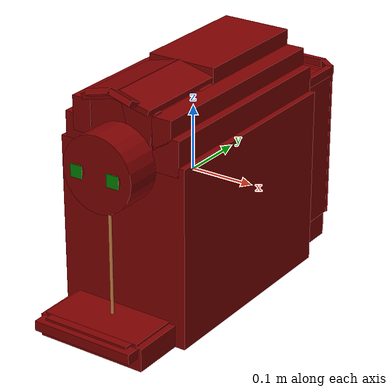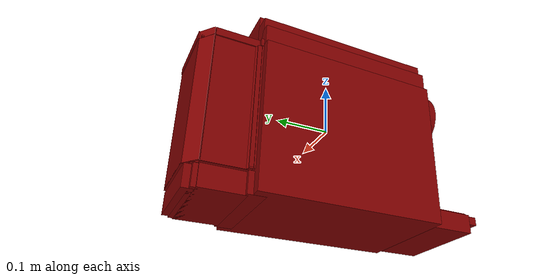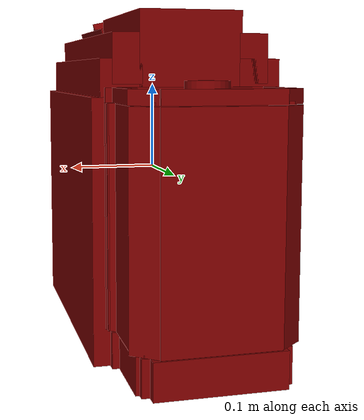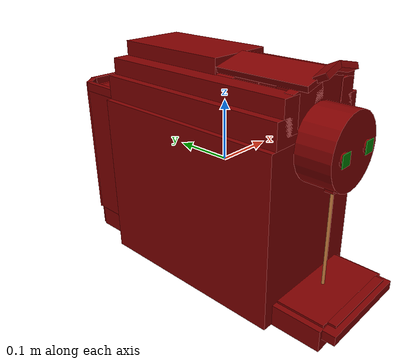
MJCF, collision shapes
<?xml version='1.0' encoding='UTF-8'?>
<mujoco model="model">
  <compiler angle="radian"/>
  <asset>
    <mesh file="visuals/Body001.obj" name="Body001_vis"/>
    <mesh file="visuals/Body001_Clear.obj" name="Body001_Clear_vis"/>
    <mesh file="visuals/Button001.obj" name="Button001_vis"/>
    <mesh file="visuals/Button002.obj" name="Button002_vis"/>
    <mesh file="visuals/Lid001.obj" name="Lid001_vis"/>
    <mesh file="visuals/Lid002.obj" name="Lid002_vis"/>
    <mesh file="visuals/Lid003.obj" name="Lid003_vis"/>
    <texture file="visuals/T_BC001.png" name="Body001_material" type="2d"/>
    <material name="Body001_material" rgba="1 1 1 1.0" texture="Body001_material" shininess="1" specular="1"/>
    <texture file="visuals/T_BC001.png" name="Body001_Clear_material" type="2d"/>
    <material name="Body001_Clear_material" rgba="1 1 1 0.1037735641002655" texture="Body001_Clear_material" shininess="0.141421377658844" specular="0.3103448502657381"/>
    <texture file="visuals/T_BC001.png" name="Lid003_material" type="2d"/>
    <material name="Lid003_material" rgba="1 1 1 1.0" texture="Lid003_material" shininess="1" specular="1"/>
    <texture file="visuals/T_BC001.png" name="Button001_material" type="2d"/>
    <material name="Button001_material" rgba="1 1 1 1.0" texture="Button001_material" shininess="1" specular="1"/>
    <texture file="visuals/T_BC001.png" name="Button002_material" type="2d"/>
    <material name="Button002_material" rgba="1 1 1 1.0" texture="Button002_material" shininess="1" specular="1"/>
    <texture file="visuals/T_BC001.png" name="Lid001_material" type="2d"/>
    <material name="Lid001_material" rgba="1 1 1 1.0" texture="Lid001_material" shininess="1" specular="1"/>
    <texture file="visuals/T_BC001.png" name="Lid002_material" type="2d"/>
    <material name="Lid002_material" rgba="1 1 1 1.0" texture="Lid002_material" shininess="1" specular="1"/>
  </asset>
  <default>
    <default class="visual">
      <geom conaffinity="0" contype="0" group="1" type="mesh"/>
    </default>
    <default class="collision">
      <geom group="0" rgba="0.5 0 0 0.5"/>
    </default>
    <default class="spawn">
      <geom group="0" rgba="1 1 1 0.5" contype="0" conaffinity="0"/>
      <site group="0" rgba="1 1 1 0.5"/>
    </default>
    <default class="region">
      <geom group="1" conaffinity="0" contype="0" rgba="0 1 0 0"/>
    </default>
  </default>
  <worldbody>
    <body>
      <body name="object">
        <geom class="collision" type="box" pos="-0.03053063154220581 -0.23362992703914642 0.07605771720409393" size="0.009716453030705452 0.000539808941539377 0.009716395288705826" quat="1.0 0.0 0.0 0.0" name="start_button_1" rgba="0.0 0.5 0 0.5"/>
        <geom class="collision" type="box" pos="0.030636020004749298 -0.2336101233959198 0.07637032121419907" size="0.009875725023448467 0.0005388128920458257 0.00987567100673914" quat="1.0 0.0 0.0 0.0" name="start_button_2" rgba="0.0 0.5 0 0.5"/>
        <site type="cylinder" rgba="0.8 0.5 0.25 1" size="0.0025214573834091425 0.08763912320137024" pos="0.0004139021330047399 -0.20192886888980865 -0.06744450330734253" name="coffee_liquid"/>
        <site rgba="0 0 0 0" size="0.009999999776482582 0.009999999776482582" pos="-2.2351741790771484e-08 -0.2032894641160965 -0.15184441208839417" name="receptacle_place_site"/>
        <geom mesh="Body001_vis" type="mesh" solimp="0.998 0.998 0.001" solref="0.001 1" density="100" friction="0.95 0.3 0.1" class="visual" material="Body001_material"/>
        <geom class="collision" type="cylinder" pos="-2.411042476779812e-10 -0.1705763339996338 0.07597971707582474" size="0.05787423253059387 0.057993460446596146" quat="0.7071067094802856 0.7071068286895752 0.0 0.0"/>
        <geom class="collision" type="box" pos="0.00012670390424318612 -0.21279460191726685 -0.17189161479473114" size="0.08779206871986389 0.0403498150408268 0.01748676411807537" quat="1.0 0.0 0.0 0.0"/>
        <geom class="collision" type="box" pos="5.317684554029256e-05 -0.2630012035369873 -0.1621111035346985" size="0.08211002498865128 0.010898980312049389 0.007653003092855215" quat="1.0 0.0 0.0 0.0"/>
        <geom class="collision" type="box" pos="-0.07402420043945312 -0.003223898122087121 0.10161573439836502" size="0.021987872198224068 0.16922087967395782 0.026904582977294922" quat="1.0 0.0 0.0 0.0"/>
        <geom class="collision" type="box" pos="-0.06755135953426361 -0.003223898122087121 0.1287151575088501" size="0.015515031293034554 0.16922087967395782 0.026026546955108643" quat="1.0 0.0 0.0 0.0"/>
        <geom class="collision" type="box" pos="0.07366996258497238 -0.003223898122087121 0.10161573439836502" size="0.021987872198224068 0.16922087967395782 0.026904582977294922" quat="1.0 0.0 0.0 0.0"/>
        <geom class="collision" type="box" pos="0.0674564391374588 -0.003223898122087121 0.1287151575088501" size="0.015515031293034554 0.16922087967395782 0.026026546955108643" quat="1.0 0.0 0.0 0.0"/>
        <geom class="collision" type="box" pos="0.0 0.06765224784612656 0.11178668588399887" size="0.054682616144418716 0.09834473580121994 0.06648891419172287" quat="1.0 0.0 0.0 0.0"/>
        <geom class="collision" type="box" pos="-0.01927906461060047 -0.04619322344660759 0.10860741138458252" size="0.031698450446128845 0.01550072617828846 0.052728310227394104" quat="0.9930583834648132 0.0 -0.11762247234582901 0.0"/>
        <geom class="collision" type="box" pos="0.014891242608428001 -0.04619322344660759 0.10917342454195023" size="0.031698450446128845 0.01550072617828846 0.052352216094732285" quat="0.9955055713653564 0.0 0.0947032943367958 0.0"/>
        <geom class="collision" type="box" pos="-0.019580164924263954 -0.16349199414253235 0.10986063629388809" size="0.031698450446128845 0.007462764158844948 0.05401720106601715" quat="0.9930583834648132 0.0 -0.11762247234582901 0.0"/>
        <geom class="collision" type="box" pos="0.015205183066427708 -0.16349199414253235 0.11080853641033173" size="0.031698450446128845 0.007462764158844948 0.05401719734072685" quat="0.9955055713653564 0.0 0.0947032943367958 0.0"/>
        <geom class="collision" type="box" pos="-2.8696833396679722e-05 0.15990829467773438 -0.17001403868198395" size="0.0865601897239685 0.01595141924917698 0.019364338368177414" quat="1.0 0.0 0.0 0.0"/>
        <geom class="collision" type="box" pos="-7.633509085280821e-05 0.21069112420082092 -0.17001403868198395" size="0.07924415171146393 0.03944094106554985 0.019364338368177414" quat="1.0 0.0 0.0 0.0"/>
        <geom class="collision" type="box" pos="-0.0005353026208467782 0.2314356565475464 -0.17001403868198395" size="0.06761838495731354 0.038716644048690796 0.019364338368177414" quat="1.0 0.0 0.0 0.0"/>
        <geom class="collision" type="box" pos="-0.0005353022716008127 0.21958574652671814 -0.17001403868198395" size="0.07573413103818893 0.038716644048690796 0.019364338368177414" quat="1.0 0.0 0.0 0.0"/>
        <geom class="collision" type="box" pos="0.0 -0.20203378796577454 0.017765555530786514" size="0.009317067451775074 0.007558492012321949 0.007558492012321949" quat="1.0 0.0 0.0 0.0"/>
        <geom class="collision" type="box" pos="-0.00018750832532532513 -0.003223898122087121 -0.04971674084663391" size="0.10459920018911362 0.16922087967395782 0.13929705321788788" quat="1.0 0.0 0.0 0.0"/>
        <body name="Body001_Clear">
          <joint axis="0.0 0.0 1.0" pos="-0.0018520471639931202 0.22811758518218994 -0.025827983394265175" limited="true" name="Body001_Clear_joint" range="0.0 0.05" type="slide" damping="1" frictionloss="1" armature=".01" stiffness="0.05"/>
          <geom mesh="Body001_Clear_vis" type="mesh" solimp="0.998 0.998 0.001" solref="0.001 1" density="100" friction="0.95 0.3 0.1" class="visual" material="Body001_Clear_material"/>
          <geom class="collision" type="box" pos="-5.596634309767978e-06 0.16842298209667206 -0.03237038478255272" size="0.0916927382349968 0.001382937072776258 0.11614834517240524" quat="1.0 0.0 0.0 0.0"/>
          <geom class="collision" type="box" pos="0.08171401172876358 0.21401485800743103 -0.03237039968371391" size="0.0015715655172243714 0.03611720725893974 0.11614836752414703" quat="1.0 0.0 0.0 0.0"/>
          <geom class="collision" type="box" pos="-0.08155886828899384 0.21401485800743103 -0.03237039968371391" size="0.0015229019336402416 0.03611720725893974 0.11614836752414703" quat="1.0 0.0 0.0 0.0"/>
          <geom class="collision" type="box" pos="0.00016788806533440948 0.2716948986053467 -0.03237039968371391" size="0.0013829396339133382 0.06073664128780365 0.11614836752414703" quat="0.7071067094802856 0.0 0.0 0.7071068286895752"/>
          <geom class="collision" type="box" pos="-0.07130854576826096 0.2615704834461212 -0.03237039968371391" size="0.0015735254855826497 0.0160224549472332 0.11614836752414703" quat="0.4308455288410187 0.0 0.0 0.9024257063865662"/>
          <geom class="collision" type="box" pos="0.0724475085735321 0.26058006286621094 -0.03237039968371391" size="0.0014991385396569967 0.01602245680987835 0.11614836752414703" quat="0.430841863155365 0.0 -0.0 -0.9024274349212646"/>
          <geom class="collision" type="box" pos="0.08553911745548248 0.17683634161949158 -0.03213093802332878" size="0.0015715656336396933 0.0037710536271333694 0.11614834517240524" quat="0.8685362935066223 0.0 0.0 0.4956255555152893"/>
          <geom class="collision" type="box" pos="-0.08512801676988602 0.17659340798854828 -0.03213093802332878" size="0.0015229020500555634 0.003771053859964013 0.11614834517240524" quat="0.8518987894058228 0.0 -0.0 -0.5237064361572266"/>
          <geom class="collision" type="box" pos="0.08909048140048981 0.17291393876075745 -0.03213093802332878" size="0.0015715655172243714 0.0037710536271333694 0.11614834517240524" quat="1.0 0.0 0.0 0.0"/>
          <geom class="collision" type="box" pos="-0.08849915862083435 0.17328587174415588 -0.03213093802332878" size="0.0015229019336402416 0.0037710536271333694 0.11614834517240524" quat="1.0 0.0 0.0 0.0"/>
          <geom class="collision" type="box" pos="0.000552522367797792 0.21184967458248138 -0.1473909318447113" size="0.08273301273584366 0.03828238323330879 0.001346719916909933" quat="1.0 0.0 0.0 0.0"/>
          <geom class="collision" type="box" pos="0.00016788857465144247 0.25995734333992004 -0.1473909318447113" size="0.013120495714247227 0.06073664128780365 0.001346719916909933" quat="0.7071067094802856 0.0 0.0 0.7071068286895752"/>
          <geom class="collision" type="box" pos="0.0003180823987349868 0.17186251282691956 -0.14715147018432617" size="0.09034392237663269 0.004822471644729376 0.0013467067619785666" quat="1.0 0.0 0.0 0.0"/>
          <geom class="collision" type="box" pos="0.00016788857465144247 0.24878957867622375 -0.14739090204238892" size="0.013120495714247227 0.07376404851675034 0.0013467329554259777" quat="0.7071067094802856 0.0 0.0 0.7071068286895752"/>
          <body name="Lid003">
            <joint axis="0.0 0.0 1.0" pos="0.0005306959501467645 0.21413211524486542 0.09453592449426651" limited="true" name="Lid003_joint" range="0.0 0.05" type="slide" damping="1" frictionloss="1" armature=".01" stiffness="0.05"/>
            <geom mesh="Lid003_vis" type="mesh" solimp="0.998 0.998 0.001" solref="0.001 1" density="100" friction="0.95 0.3 0.1" class="visual" material="Lid003_material"/>
            <geom class="collision" type="cylinder" pos="-2.663439746530827e-10 0.21808181703090668 0.09723663330078125" size="0.022404799237847328 0.009298422373831272" quat="1.0 0.0 0.0 0.0"/>
            <geom class="collision" type="box" pos="-7.633509085280821e-05 0.21069112420082092 0.08620285242795944" size="0.07924415171146393 0.03944094106554985 0.001586661208420992" quat="1.0 0.0 0.0 0.0"/>
            <geom class="collision" type="box" pos="-0.0005353026208467782 0.2314356565475464 0.08620285242795944" size="0.06761838495731354 0.038716644048690796 0.001586661208420992" quat="1.0 0.0 0.0 0.0"/>
            <geom class="collision" type="box" pos="-0.0005353022716008127 0.21958574652671814 0.08620285242795944" size="0.07573413103818893 0.038716644048690796 0.001586664468050003" quat="1.0 0.0 0.0 0.0"/>
            <geom class="collision" type="box" pos="-5.596634309767978e-06 0.16962318122386932 0.0920509323477745" size="0.0916927382349968 0.0024938483256846666 0.007434743922203779" quat="1.0 0.0 0.0 0.0"/>
            <geom class="collision" type="box" pos="0.08032383024692535 0.21069112420082092 0.0920509323477745" size="0.004333652090281248 0.03944094106554985 0.0074347383342683315" quat="1.0 0.0 0.0 0.0"/>
            <geom class="collision" type="box" pos="-0.0800739973783493 0.21069112420082092 0.0920509323477745" size="0.004333652090281248 0.03944094106554985 0.0074347383342683315" quat="1.0 0.0 0.0 0.0"/>
            <geom class="collision" type="box" pos="0.00016788813809398562 0.2698688805103302 0.0920509323477745" size="0.004333653021603823 0.06073664128780365 0.0074347383342683315" quat="0.7071067094802856 0.0 0.0 0.7071068286895752"/>
            <geom class="collision" type="box" pos="-0.06940650939941406 0.25921809673309326 0.0920509323477745" size="0.004333653952926397 0.0160224549472332 0.0074347383342683315" quat="0.4308455288410187 0.0 0.0 0.9024257063865662"/>
            <geom class="collision" type="box" pos="0.07134625315666199 0.25921809673309326 0.0920509323477745" size="0.004333653952926397 0.01602245680987835 0.0074347383342683315" quat="0.430841863155365 0.0 -0.0 -0.9024274349212646"/>
            <geom class="collision" type="box" pos="-2.8696511435555294e-05 0.1731165200471878 0.08620285242795944" size="0.0819152370095253 0.0027431941125541925 0.001586664468050003" quat="1.0 0.0 0.0 0.0"/>
          </body>
        </body>
        <body name="Button001">
          <joint axis="0.0 1.0 0.0" pos="0.030650796368718147 -0.2325836420059204 0.07635096460580826" limited="true" name="Button001_joint" range="0.0 0.003" type="slide" damping="1" frictionloss="1" armature=".01" stiffness="0.05"/>
          <geom mesh="Button001_vis" type="mesh" solimp="0.998 0.998 0.001" solref="0.001 1" density="100" friction="0.95 0.3 0.1" class="visual" material="Button001_material"/>
          <geom class="collision" type="cylinder" pos="0.030634805560112 -0.23100316524505615 0.07635785639286041" size="0.00998028926551342 0.001716745551675558" quat="0.7071067094802856 0.70710688829422 0.0 0.0"/>
        </body>
        <body name="Button002">
          <joint axis="0.0 1.0 0.0" pos="-0.030592434108257294 -0.23260396718978882 0.07600102573633194" limited="true" name="Button002_joint" range="0.0 0.003" type="slide" damping="1" frictionloss="1" armature=".01" stiffness="0.05"/>
          <geom mesh="Button002_vis" type="mesh" solimp="0.998 0.998 0.001" solref="0.001 1" density="100" friction="0.95 0.3 0.1" class="visual" material="Button002_material"/>
          <geom class="collision" type="cylinder" pos="-0.030498865991830826 -0.2308443784713745 0.07607866823673248" size="0.009946310892701149 0.0018599393079057336" quat="0.7071067094802856 0.70710688829422 0.0 0.0"/>
        </body>
        <body name="Lid001">
          <joint axis="-1.0 0.0 0.0" pos="-0.0003852803201880306 -0.030995408073067665 0.17867350578308105" limited="true" name="Lid001_joint" range="0.0 1.5707963267948966" type="hinge" damping="1" frictionloss="1" armature=".01" stiffness="0.05"/>
          <geom mesh="Lid001_vis" type="mesh" solimp="0.998 0.998 0.001" solref="0.001 1" density="100" friction="0.95 0.3 0.1" class="visual" material="Lid001_material"/>
          <geom class="collision" type="box" pos="-0.027844641357660294 -0.11031822860240936 0.17027218639850616" size="0.02893037162721157 0.07583232969045639 0.004412563517689705" quat="0.9922404885292053 0.0 -0.12433341890573502 0.0"/>
          <geom class="collision" type="box" pos="0.02754683420062065 -0.11031822860240936 0.17031501233577728" size="0.029229823499917984 0.07583232969045639 0.004412563517689705" quat="0.9933344125747681 0.0 0.11526815593242645 0.0"/>
          <geom class="collision" type="box" pos="-0.0189436636865139 -0.18905684351921082 0.178807333111763" size="0.019745416939258575 0.01037210039794445 0.004412563983350992" quat="0.9687158465385437 -0.21478089690208435 -0.12138554453849792 0.026913244277238846"/>
          <geom class="collision" type="box" pos="0.018283091485500336 -0.1890755146741867 0.1787673383951187" size="0.01971319317817688 0.01037210039794445 0.004412563052028418" quat="0.9697838425636292 -0.21501770615577698 0.11253515630960464 -0.024950968101620674"/>
        </body>
        <body name="Lid002">
          <joint axis="0.0 0.0 1.0" pos="-0.00010729048517532647 -0.22075797617435455 -0.1503310650587082" limited="true" name="Lid002_joint" range="0.0 0.05" type="slide" damping="1" frictionloss="1" armature=".01" stiffness="0.05" springref="-20"/>
          <geom mesh="Lid002_vis" type="mesh" solimp="0.998 0.998 0.001" solref="0.001 1" density="100" friction="0.95 0.3 0.1" class="visual" material="Lid002_material"/>
          <geom class="collision" type="box" pos="0.00023568220785818994 -0.2138085663318634 -0.1508917659521103" size="0.07958369702100754 0.038984015583992004 0.0016639484092593193" quat="1.0 0.0 0.0 0.0"/>
          <geom class="collision" type="box" pos="0.0016715932870283723 -0.25900763273239136 -0.1509183645248413" size="0.07008546590805054 0.007257241290062666 0.00163732236251235" quat="1.0 0.0 0.0 0.0"/>
        </body>
        <geom class="region" name="reg_main" type="box" pos="1.4901161193847656e-08 -2.9802322387695312e-08 0.0" size="0.10497461259365082 0.27396294474601746 0.1890704333782196"/>
      </body>
    </body>
  </worldbody>
  <actuator>
    <motor name="Body001_Clear_joint_actuator" joint="Body001_Clear_joint" gear="10"/>
    <motor name="Button001_joint_actuator" joint="Button001_joint" gear="0.5"/>
    <motor name="Button002_joint_actuator" joint="Button002_joint" gear="0.5"/>
    <motor name="Lid001_joint_actuator" joint="Lid001_joint" gear="0.5"/>
    <motor name="Lid002_joint_actuator" joint="Lid002_joint" gear="0.5"/>
    <motor name="Lid003_joint_actuator" joint="Lid003_joint" gear="0.5"/>
  </actuator>
</mujoco>
